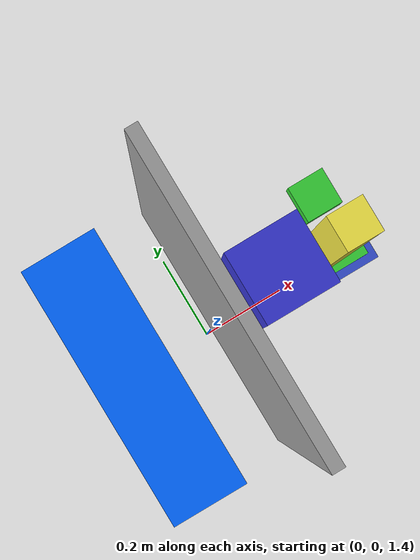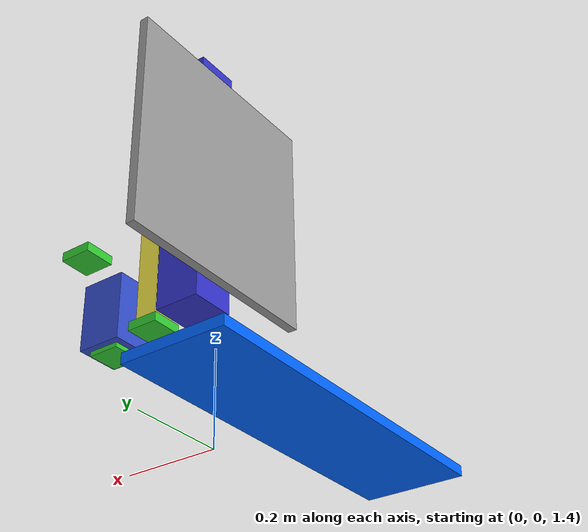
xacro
<?xml version="1.0"?>

<robot xmlns:xacro="http://www.ros.org/wiki/xacro" name="sampler">

    <!-- Xacro arguments -->
    <xacro:arg name="ros2_control" default="false"/>
    <xacro:arg name="use_gazebo" default="false"/>
    <xacro:arg name="use_mock_hardware" default="false"/>

    <!-- Component definitions -->
    <xacro:include filename="$(find ros_deep_sampler)/urdf/sampler_links.xacro"/>
    <xacro:include filename="$(find ros_deep_sampler)/urdf/sampler_joints.xacro"/>
    <xacro:include filename="$(find ros_deep_sampler)/urdf/sampler_ros2_control.xacro"/>
    <xacro:include filename="$(find ros_deep_sampler)/urdf/sampler_gazebo.xacro"/>

    <!-- Main robot macro -->
    <xacro:macro name="sampler_robot"
        params="
            parent:='world'
            xyz:='0 0 0'
            rpy:='0 0 0'
            ros2_control:=false
            use_gazebo:=false
            use_mock_hardware:=false
            prefix:=''
        ">

        <!-- Mechanical structure -->
        <xacro:sampler_links prefix="${prefix}"/>
        <xacro:sampler_joints prefix="${prefix}"/>

        <!-- ROS 2 Control -->
        <xacro:if value="${ros2_control}">
            <xacro:sampler_ros2_control
                use_gazebo="${use_gazebo}"
                use_mock_hardware="${use_mock_hardware}"
                prefix="${prefix}"/>
        </xacro:if>

        <!-- Gazebo -->
        <xacro:if value="${use_gazebo}">
            <xacro:sampler_gazebo/>
        </xacro:if>

    </xacro:macro>

    <!-- Instantiate robot -->
    <xacro:sampler_robot
        ros2_control="$(arg ros2_control)"
        use_gazebo="$(arg use_gazebo)"
        use_mock_hardware="$(arg use_mock_hardware)"/>

</robot>

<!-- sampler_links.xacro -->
<robot xmlns:xacro="http://www.ros.org/wiki/xacro">

    <!--
        Sampler robot link definitions.

        Parameter:
            prefix - Optional prefix applied to all link names.
    -->

    <xacro:macro name="sampler_links" params="prefix:=''">

        <!-- ================= WORLD ================= -->

        <link name="${prefix}world"/>

        <!-- ================= BASE PLATFORM ================= -->

        <link name="${prefix}base_link">

            <visual>
                <geometry>
                    <box size="0.5 0.5 0.02"/>
                </geometry>

                <origin xyz="0 0 0" rpy="0 1.5707 0"/>

                <material name="gray">
                    <color rgba="0.6 0.6 0.6 1.0"/>
                </material>
            </visual>

            <collision>
                <geometry>
                    <box size="0.5 0.5 0.02"/>
                </geometry>

                <origin xyz="0 0 0" rpy="0 1.5707 0"/>
            </collision>

            <inertial>
                <mass value="2.0"/>
                <origin xyz="0 0 1" rpy="0 1.5707 0"/>

                <inertia
                    ixx="0.02" ixy="0.0" ixz="0.0"
                    iyy="0.02" iyz="0.0"
                    izz="0.04"/>
            </inertial>

        </link>

        <!-- ================= PLATFORM ================= -->

        <link name="${prefix}platform_link">

            <visual>
                <geometry>
                    <box size="0.1 0.6 0.1"/>
                </geometry>

                <origin xyz="0 0 0" rpy="1.5707 0 0"/>

                <material name="blue">
                    <color rgba="0.2 0.2 0.8 1.0"/>
                </material>
            </visual>

            <collision>
                <geometry>
                    <box size="0.1 0.6 0.1"/>
                </geometry>

                <origin xyz="0 0 0" rpy="1.5707 0 0"/>
            </collision>

            <inertial>
                <mass value="5.0"/>
                <origin xyz="0 0 0" rpy="0 0 0"/>

                <inertia
                    ixx="0.154" ixy="0.0" ixz="0.0"
                    iyy="0.008" iyz="0.0"
                    izz="0.154"/>
            </inertial>

        </link>

        <!-- ================= PLATFORM VELOCITY BRANCH ================= -->

        <!-- ================= DRILL ================= -->

        <link name="${prefix}drill_link">

            <visual>
                <geometry>
                    <box size="0.05 0.6 0.05"/>
                </geometry>

                <origin xyz="0 0 0" rpy="1.5707 0 0"/>
            </visual>

            <collision>
                <geometry>
                    <box size="0.05 0.6 0.05"/>
                </geometry>

                <origin xyz="0 0 0" rpy="1.5707 0 0"/>
            </collision>

            <inertial>
                <mass value="3.0"/>
                <origin xyz="0 0 0" rpy="0 0 0"/>

                <inertia
                    ixx="0.01" ixy="0.0" ixz="0.0"
                    iyy="0.01" iyz="0.0"
                    izz="0.01"/>
            </inertial>

        </link>

        <!-- ================= DRILL VELOCITY BRANCH ================= -->

        <!-- ================= DRILL ROTOR ================= -->

        <link name="${prefix}rotor_link">

            <visual>
                <geometry>
                    <box size="0.07 0.07 0.02"/>
                </geometry>

                <origin xyz="0 0 0" rpy="0 0 0"/>

                <material name="green">
                    <color rgba="0.2 0.8 0.2 1.0"/>
                </material>
            </visual>

            <collision>
                <geometry>
                    <box size="0.07 0.07 0.02"/>
                </geometry>

                <origin xyz="0 0 0" rpy="0 0 0"/>
            </collision>

            <inertial>
                <mass value="0.5"/>
                <origin xyz="0 0 0" rpy="0 0 0"/>

                <inertia
                    ixx="0.0022" ixy="0.0" ixz="0.0"
                    iyy="0.0022" iyz="0.0"
                    izz="0.0004"/>
            </inertial>

        </link>

        <!-- ================= VACUUM BODY ================= -->

        <link name="${prefix}vaccum_body_link">

            <visual>
                <geometry>
                    <box size="0.1 0.1 0.15"/>
                </geometry>

                <origin xyz="0 0 0" rpy="0 0 0"/>

                <material name="blue">
                    <color rgba="0.2 0.3 0.8 1.0"/>
                </material>
            </visual>

            <collision>
                <geometry>
                    <box size="0.1 0.1 0.15"/>
                </geometry>
            </collision>

            <inertial>
                <mass value="5.0"/>
                <origin xyz="0 0 0"/>

                <inertia
                    ixx="0.2" ixy="0.0" ixz="0.0"
                    iyy="0.2" iyz="0.0"
                    izz="0.2"/>
            </inertial>

        </link>

        <!-- ================= VACUUM ROTOR ================= -->

        <link name="${prefix}vacuum_rotor_link">

            <visual>
                <geometry>
                    <box size="0.07 0.07 0.02"/>
                </geometry>

                <origin xyz="0 0 0" rpy="0 0 0"/>

                <material name="green">
                    <color rgba="0.2 0.8 0.2 1.0"/>
                </material>
            </visual>

            <collision>
                <geometry>
                    <box size="0.07 0.07 0.02"/>
                </geometry>

                <origin xyz="0 0 0" rpy="0 0 0"/>
            </collision>

            <inertial>
                <mass value="0.5"/>
                <origin xyz="0 0 0" rpy="0 0 0"/>

                <inertia
                    ixx="0.0022" ixy="0.0" ixz="0.0"
                    iyy="0.0022" iyz="0.0"
                    izz="0.0004"/>
            </inertial>

        </link>

        <!-- ================= BRUSH ROTOR ================= -->

        <link name="${prefix}brush_rotor_link">

            <visual>
                <geometry>
                    <box size="0.07 0.07 0.02"/>
                </geometry>

                <origin xyz="0 0 0" rpy="0 0 0"/>

                <material name="green">
                    <color rgba="0.2 0.8 0.2 1.0"/>
                </material>
            </visual>

            <collision>
                <geometry>
                    <box size="0.07 0.07 0.02"/>
                </geometry>

                <origin xyz="0 0 0" rpy="0 0 0"/>
            </collision>

            <inertial>
                <mass value="0.5"/>
                <origin xyz="0 0 0" rpy="0 0 0"/>

                <inertia
                    ixx="0.0022" ixy="0.0" ixz="0.0"
                    iyy="0.0022" iyz="0.0"
                    izz="0.0004"/>
            </inertial>

        </link>

        <!-- ================= CONTAINER ================= -->

        <link name="${prefix}container_link">

            <visual>
                <origin xyz="0 0 0" rpy="0 0 0"/>

                <geometry>
                    <box size="0.7 0.2 0.02"/>
                </geometry>

                <material name="blue">
                    <color rgba="0 0.4 1 1"/>
                </material>
            </visual>

            <collision>
                <origin xyz="0 0 0" rpy="0 0 0"/>

                <geometry>
                    <box size="0.7 0.1 0.02"/>
                </geometry>
            </collision>

            <inertial>
                <origin xyz="0 0 0" rpy="0 0 0"/>

                <mass value="1.0"/>

                <inertia
                    ixx="0.01" ixy="0.0" ixz="0.0"
                    iyy="0.01" iyz="0.0"
                    izz="0.01"/>
            </inertial>

        </link>

        <!-- ================= CONTAINER VELOCITY BRANCH ================= -->

        <!-- ================= CLAMP ================= -->

        <link name="${prefix}clamp_link">

            <visual>
                <geometry>
                    <box size="0.07 0.07 0.02"/>
                </geometry>

                <origin xyz="0 0 0" rpy="0 0 0"/>

                <material name="green">
                    <color rgba="0.2 0.8 0.2 1.0"/>
                </material>
            </visual>

            <collision>
                <geometry>
                    <box size="0.07 0.07 0.02"/>
                </geometry>

                <origin xyz="0 0 0" rpy="0 0 0"/>
            </collision>

            <inertial>
                <mass value="0.5"/>
                <origin xyz="0 0 0" rpy="0 0 0"/>

                <inertia
                    ixx="0.0022" ixy="0.0" ixz="0.0"
                    iyy="0.0022" iyz="0.0"
                    izz="0.0004"/>
            </inertial>

        </link>

    </xacro:macro>

</robot>

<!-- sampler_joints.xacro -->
<robot xmlns:xacro="http://www.ros.org/wiki/xacro">

  <xacro:macro name="sampler_joints" params="prefix:=''">

    <joint name="${prefix}world_to_base" type="fixed">
      <parent link="${prefix}world"/>
      <child link="${prefix}base_link"/>
      <origin xyz="0 0 2" rpy="0 0 0"/>
    </joint>

    <!-- Platform vertical movement -->
    <joint name="${prefix}platform_joint" type="prismatic">
      <parent link="${prefix}base_link"/>
      <child link="${prefix}platform_link"/>
      <origin xyz="0.06 0 0" rpy="0 0 0"/>
      <axis xyz="0 0 1"/>
      <limit lower="-0.5" upper="0.5" effort="5000" velocity="5"/>
    </joint>

    <!-- Drill vertical movement -->
    <joint name="${prefix}drill_joint" type="prismatic">
      <parent link="${prefix}platform_link"/>
      <child link="${prefix}drill_link"/>
      <origin xyz="0.1 0 0" rpy="0 0 0"/>
      <axis xyz="0 0 1"/>
      <limit lower="-0.5" upper="0.5" effort="5000" velocity="0.5"/>
    </joint>

    <!-- Drill rotor -->
    <joint name="${prefix}rotor_joint" type="continuous">
      <parent link="${prefix}drill_link"/>
      <child link="${prefix}rotor_link"/>
      <origin xyz="0 0 -0.3" rpy="0 0 0"/>
      <axis xyz="0 0 1"/>
      <limit effort="5000" velocity="50"/>
    </joint>

    <!-- Vacuum body fixed to platform -->
    <joint name="${prefix}vaccum_fixed_joint" type="fixed">
      <parent link="${prefix}platform_link"/>
      <child link="${prefix}vaccum_body_link"/>
      <origin xyz="0.2 0 -0.25" rpy="0 0 0"/>
    </joint>

    <!-- Vacuum rotor -->
    <joint name="${prefix}vacuum_rotor_joint" type="continuous">
      <parent link="${prefix}vaccum_body_link"/>
      <child link="${prefix}vacuum_rotor_link"/>
      <origin xyz="0 0 0.075" rpy="0 0 0"/>
      <axis xyz="0 0 1"/>
      <limit effort="5000" velocity="50"/>
    </joint>

    <!-- Brush rotor -->
    <joint name="${prefix}brush_rotor_joint" type="continuous">
      <parent link="${prefix}vaccum_body_link"/>
      <child link="${prefix}brush_rotor_link"/>
      <origin xyz="0 0 -0.075" rpy="0 0 0"/>
      <axis xyz="0 0 1"/>
      <limit effort="5000" velocity="50"/>
    </joint>

    <!-- Container rotation -->
    <joint name="${prefix}container_joint" type="revolute">
      <parent link="${prefix}base_link"/>
      <child link="${prefix}container_link"/>
      <origin xyz="-0.2 0 -0.6" rpy="0 0 1.57"/>
      <axis xyz="0 0 1"/>
      <limit lower="-1.6" upper="1.6" effort="1000" velocity="10"/>
    </joint>

    <!-- Clamp rotation -->
    <joint name="${prefix}clamp_joint" type="revolute">
      <parent link="${prefix}vaccum_body_link"/>
      <child link="${prefix}clamp_link"/>
      <origin xyz="0 0.1 0.1" rpy="0 0 0"/>
      <axis xyz="1 0 0"/>
      <limit lower="-1.6" upper="1.6" effort="100" velocity="20"/>
    </joint>
  </xacro:macro>
  <!-- Main mechanical joints                                -->

  <!-- Fixed connection between world and robot base -->

  <!-- Additional velocity joints                            -->
  <!-- These are separate physical joints in the original    -->
  <!-- URDF, connected to their own *_link1 links.            -->

</robot>
